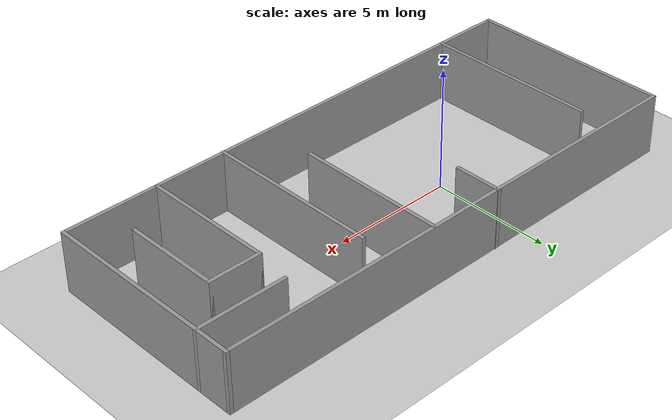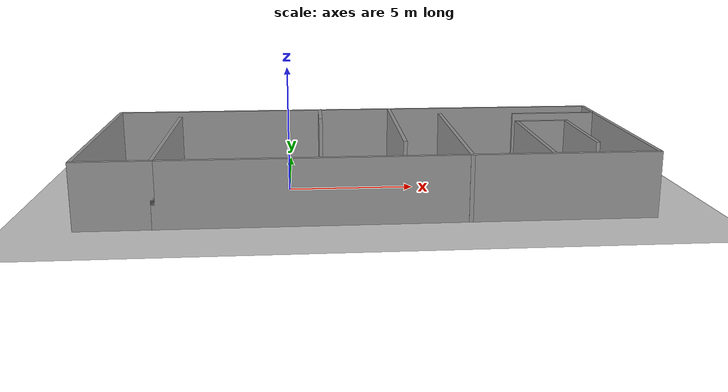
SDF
<sdf version="1.7">
 <world name="default">
  <light name="sun" type="directional">
   <pose>0 0 10 0 -0 0</pose>
   <diffuse>0.8 0.8 0.8 1</diffuse>
   <specular>0.2 0.2 0.2 1</specular>
   <attenuation>
    <range>1000</range>
    <constant>0.9</constant>
    <linear>0.01</linear>
    <quadratic>0.001</quadratic>
   </attenuation>
   <direction>-0.5 0.1 -0.9</direction>
   <spot><inner_angle>0</inner_angle><outer_angle>0</outer_angle><falloff>0</falloff></spot>
  </light>
  <model name="ground_plane">
   <static>1</static>
   <link name="link">
    <collision name="collision">
     <geometry><plane><normal>0 0 1</normal><size>100 100</size></plane></geometry>
     <surface><friction><ode><mu>100</mu><mu2>50</mu2></ode></friction></surface>
    </collision>
    <visual name="visual">
     <cast_shadows>0</cast_shadows>
     <geometry><plane><normal>0 0 1</normal><size>100 100</size></plane></geometry>
     <material>
      <script><uri>file://media/materials/scripts/gazebo.material</uri><name>Gazebo/Grey</name></script>
     </material>
    </visual>
   </link>
  </model>
  <gravity>0 0 -9.8</gravity>
  <magnetic_field>6e-06 2.3e-05 -4.2e-05</magnetic_field>
  <atmosphere type="adiabatic"/>
  <physics type="ode">
   <max_step_size>0.001</max_step_size>
   <real_time_factor>1</real_time_factor>
   <real_time_update_rate>1000</real_time_update_rate>
  </physics>
  <scene><ambient>0.4 0.4 0.4 1</ambient><background>0.7 0.7 0.7 1</background><shadows>1</shadows></scene>
  <spherical_coordinates>
   <surface_model>EARTH_WGS84</surface_model>
   <latitude_deg>0</latitude_deg>
   <longitude_deg>0</longitude_deg>
   <elevation>0</elevation>
   <heading_deg>0</heading_deg>
  </spherical_coordinates>
  <model name="environment">
   <pose>3.01093 -0.243274 0 0 -0 0</pose>
   <link name="Wall_0">
    <collision name="Wall_0_Collision">
     <geometry><box><size>7.25 0.15 2.5</size></box></geometry>
     <pose>0 0 1.25 0 -0 0</pose>
    </collision>
    <visual name="Wall_0_Visual">
     <pose>0 0 1.25 0 -0 0</pose>
     <geometry><box><size>7.25 0.15 2.5</size></box></geometry>
     <material>
      <script><uri>file://media/materials/scripts/gazebo.material</uri><name>Gazebo/Grey</name></script>
      <ambient>1 1 1 1</ambient>
     </material>
     <meta><layer>0</layer></meta>
    </visual>
    <pose>-7.675 -0.632486 0 0 -0 -1.5708</pose>
   </link>
   <link name="Wall_1">
    <collision name="Wall_1_Collision">
     <geometry><box><size>18.25 0.15 2.5</size></box></geometry>
     <pose>0 0 1.25 0 -0 0</pose>
    </collision>
    <visual name="Wall_1_Visual">
     <pose>0 0 1.25 0 -0 0</pose>
     <geometry><box><size>18.25 0.15 2.5</size></box></geometry>
     <material>
      <script><uri>file://media/materials/scripts/gazebo.material</uri><name>Gazebo/Grey</name></script>
      <ambient>1 1 1 1</ambient>
     </material>
     <meta><layer>0</layer></meta>
    </visual>
    <pose>1.375 -4.18249 0 0 -0 0</pose>
   </link>
   <link name="Wall_11">
    <collision name="Wall_11_Collision">
     <geometry><box><size>7.25 0.15 2.5</size></box></geometry>
     <pose>0 0 1.25 0 -0 0</pose>
    </collision>
    <visual name="Wall_11_Visual">
     <pose>0 0 1.25 0 -0 0</pose>
     <geometry><box><size>7.25 0.15 2.5</size></box></geometry>
     <material>
      <script><uri>file://media/materials/scripts/gazebo.material</uri><name>Gazebo/Grey</name></script>
      <ambient>1 1 1 1</ambient>
     </material>
     <meta><layer>0</layer></meta>
    </visual>
    <pose>3.57136 -0.639904 0 0 -0 -1.5708</pose>
   </link>
   <link name="Wall_13">
    <collision name="Wall_13_Collision">
     <geometry><box><size>6.25 0.15 2.5</size></box></geometry>
     <pose>0 0 1.25 0 -0 0</pose>
    </collision>
    <visual name="Wall_13_Visual">
     <pose>0 0 1.25 0 -0 0</pose>
     <geometry><box><size>6.25 0.15 2.5</size></box></geometry>
     <material>
      <script><uri>file://media/materials/scripts/gazebo.material</uri><name>Gazebo/Grey</name></script>
      <ambient>1 1 1 1</ambient>
     </material>
     <meta><layer>0</layer></meta>
    </visual>
    <pose>1.43758 1.10189 0 0 -0 -1.5708</pose>
   </link>
   <link name="Wall_15">
    <collision name="Wall_15_Collision">
     <geometry><box><size>5.5 0.15 2.5</size></box></geometry>
     <pose>0 0 1.25 0 -0 0</pose>
    </collision>
    <visual name="Wall_15_Visual">
     <pose>0 0 1.25 0 -0 0</pose>
     <geometry><box><size>5.5 0.15 2.5</size></box></geometry>
     <material>
      <script><uri>file://media/materials/scripts/gazebo.material</uri><name>Gazebo/Grey</name></script>
      <ambient>1 1 1 1</ambient>
     </material>
     <meta><layer>0</layer></meta>
    </visual>
    <pose>6.56216 -1.4634 0 0 -0 1.5708</pose>
   </link>
   <link name="Wall_16">
    <collision name="Wall_16_Collision">
     <geometry><box><size>2.25 0.15 2.5</size></box></geometry>
     <pose>0 0 1.25 0 -0 0</pose>
    </collision>
    <visual name="Wall_16_Visual">
     <pose>0 0 1.25 0 -0 0</pose>
     <geometry><box><size>2.25 0.15 2.5</size></box></geometry>
     <material>
      <script><uri>file://media/materials/scripts/gazebo.material</uri><name>Gazebo/Grey</name></script>
      <ambient>1 1 1 1</ambient>
     </material>
     <meta><layer>0</layer></meta>
    </visual>
    <pose>7.61216 1.2116 0 0 -0 0</pose>
   </link>
   <link name="Wall_17">
    <collision name="Wall_17_Collision">
     <geometry><box><size>4 0.15 2.5</size></box></geometry>
     <pose>0 0 1.25 0 -0 0</pose>
    </collision>
    <visual name="Wall_17_Visual">
     <pose>0 0 1.25 0 -0 0</pose>
     <geometry><box><size>4 0.15 2.5</size></box></geometry>
     <material>
      <script><uri>file://media/materials/scripts/gazebo.material</uri><name>Gazebo/Grey</name></script>
      <ambient>1 1 1 1</ambient>
     </material>
     <meta><layer>0</layer></meta>
    </visual>
    <pose>8.66216 -0.713399 0 0 -0 -1.5708</pose>
   </link>
   <link name="Wall_2">
    <collision name="Wall_2_Collision">
     <geometry><box><size>8.5 0.15 2.5</size></box></geometry>
     <pose>0 0 1.25 0 -0 0</pose>
    </collision>
    <visual name="Wall_2_Visual">
     <pose>0 0 1.25 0 -0 0</pose>
     <geometry><box><size>8.5 0.15 2.5</size></box></geometry>
     <material>
      <script><uri>file://media/materials/scripts/gazebo.material</uri><name>Gazebo/Grey</name></script>
      <ambient>1 1 1 1</ambient>
     </material>
     <meta><layer>0</layer></meta>
    </visual>
    <pose>10.425 -0.007487 0 0 -0 1.5708</pose>
   </link>
   <link name="Wall_3">
    <collision name="Wall_3_Collision">
     <geometry><box><size>21 0.15 2.5</size></box></geometry>
     <pose>0 0 1.25 0 -0 0</pose>
    </collision>
    <visual name="Wall_3_Visual">
     <pose>0 0 1.25 0 -0 0</pose>
     <geometry><box><size>21 0.15 2.5</size></box></geometry>
     <material>
      <script><uri>file://media/materials/scripts/gazebo.material</uri><name>Gazebo/Grey</name></script>
      <ambient>1 1 1 1</ambient>
     </material>
     <meta><layer>0</layer></meta>
    </visual>
    <pose>0 4.16751 0 0 -0 3.14159</pose>
   </link>
   <link name="Wall_4">
    <collision name="Wall_4_Collision">
     <geometry><box><size>8.5 0.15 2.5</size></box></geometry>
     <pose>0 0 1.25 0 -0 0</pose>
    </collision>
    <visual name="Wall_4_Visual">
     <pose>0 0 1.25 0 -0 0</pose>
     <geometry><box><size>8.5 0.15 2.5</size></box></geometry>
     <material>
      <script><uri>file://media/materials/scripts/gazebo.material</uri><name>Gazebo/Grey</name></script>
      <ambient>1 1 1 1</ambient>
     </material>
     <meta><layer>0</layer></meta>
    </visual>
    <pose>-10.425 -0.007487 0 0 -0 -1.5708</pose>
   </link>
   <link name="Wall_5">
    <collision name="Wall_5_Collision">
     <geometry><box><size>2.9 0.15 2.5</size></box></geometry>
     <pose>0 0 1.25 0 -0 0</pose>
    </collision>
    <visual name="Wall_5_Visual">
     <pose>0 0 1.25 0 -0 0</pose>
     <geometry><box><size>2.9 0.15 2.5</size></box></geometry>
     <material>
      <script><uri>file://media/materials/scripts/gazebo.material</uri><name>Gazebo/Grey</name></script>
      <ambient>1 1 1 1</ambient>
     </material>
     <meta><layer>0</layer></meta>
    </visual>
    <pose>-9.05 -4.18249 0 0 -0 0</pose>
   </link>
   <link name="Wall_7">
    <collision name="Wall_7_Collision">
     <geometry><box><size>3.75 0.15 2.5</size></box></geometry>
     <pose>0 0 1.25 0 -0 0</pose>
    </collision>
    <visual name="Wall_7_Visual">
     <pose>0 0 1.25 0 -0 0</pose>
     <geometry><box><size>3.75 0.15 2.5</size></box></geometry>
     <material>
      <script><uri>file://media/materials/scripts/gazebo.material</uri><name>Gazebo/Grey</name></script>
      <ambient>1 1 1 1</ambient>
     </material>
     <meta><layer>0</layer></meta>
    </visual>
    <pose>8.625 2.74751 0 0 -0 3.14159</pose>
   </link>
   <link name="Wall_9">
    <collision name="Wall_9_Collision">
     <geometry><box><size>2 0.15 2.5</size></box></geometry>
     <pose>0 0 1.25 0 -0 0</pose>
    </collision>
    <visual name="Wall_9_Visual">
     <pose>0 0 1.25 0 -0 0</pose>
     <geometry><box><size>2 0.15 2.5</size></box></geometry>
     <material>
      <script><uri>file://media/materials/scripts/gazebo.material</uri><name>Gazebo/Grey</name></script>
      <ambient>1 1 1 1</ambient>
     </material>
     <meta><layer>0</layer></meta>
    </visual>
    <pose>-1.675 3.2649 0 0 -0 1.5708</pose>
   </link>
   <static>1</static>
  </model>
 </world>
</sdf>
